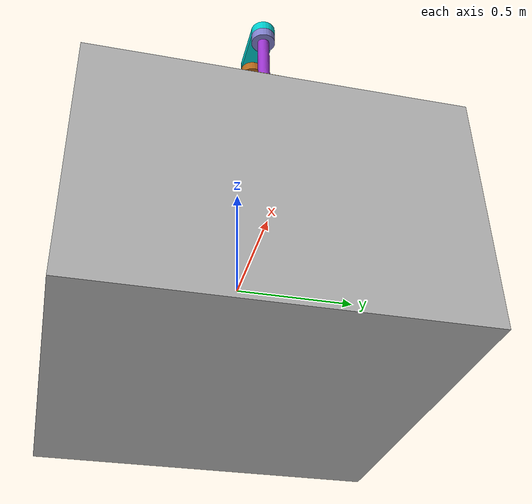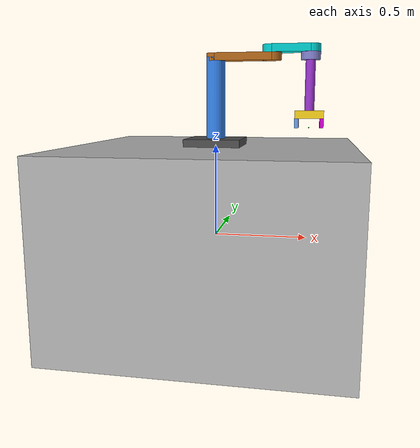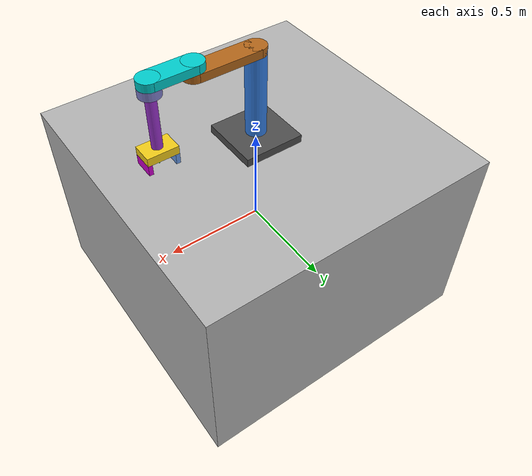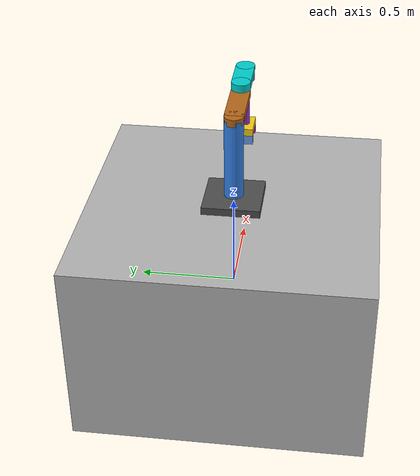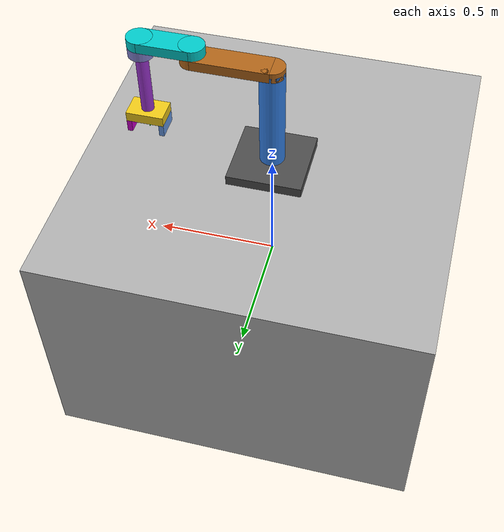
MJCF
<mujoco model="RRRP_SCARA_Robot">
  <compiler angle="radian" />
  <option timestep="0.01" />
  <option gravity="0 0 0"/>

  <visual>
    <headlight diffuse="0.8 0.8 0.8"/>
    <scale framewidth="0.02" framelength="0.5"/>
  </visual>

  <worldbody>
    <!-- Additional lighting for better visibility -->
    <light pos="1.0 1.0 2.0" dir="-1 -1 -1" diffuse="0.5 0.5 0.5"/>
    <light pos="-1.0 1.0 2.0" dir="1 -1 -1" diffuse="0.5 0.5 0.5"/>
    <light pos="0 0 3.0" dir="0 0 -1" diffuse="0.4 0.4 0.4"/>

    <!-- Table -->
    <body name="table" pos="0 0 0">
      <geom type="box" size="0.750 0.750 0.500" rgba="0.7 0.7 0.7 1.0"/>

    </body>
    <!-- Base with geometry only (no mass) -->
    <body name="base" pos="0 0 0.520">
      <!-- Base geometry: 3x LINK_RADIUS -->
      <geom type="box" size="0.150 0.150 0.020" rgba="0.3 0.3 0.3 1.0"/>

      <!-- L0: Vertical link (child of base/robot_root) - FIXED, NO JOINT -->
      <body name="L0" pos="0 0 0.020">
        <inertial pos="0 0 0.215" mass="1.0" diaginertia="0.01 0.01 0.005"/>
        <!-- L0 geometry: cylinder with specific radius -->
        <geom type="cylinder" size="0.050 0.215" pos="0 0 0.215" rgba="0.2 0.5 0.9 1.0"/>

        <!-- L1: First horizontal arm -->
        <body name="L1" pos="0 0 0.430">
          <inertial pos="0.150 0 0" mass="0.8" diaginertia="0.005 0.02 0.02"/>
          <!-- Joint 1: Shoulder joint (L1 rotates around Z-axis) -->
          <joint name="joint1" type="hinge" axis="0 0 1" pos="0 0 0" range="-1.5708 1.5708" ref="0.0000" damping="10.0"/>
          <!-- L1 geometry: main rectangular body -->
          <geom type="box" size="0.150 0.050 0.020" pos="0.150 0 0" rgba="0.7 0.4 0.1 1.0"/>

          <!-- L1 cylindrical joints at both ends for better visualization -->
          <geom name="L1_start_joint" type="cylinder" size="0.050 0.020" pos="0 0 0" rgba="0.7 0.4 0.1 1.0"/>
          <geom name="L1_end_joint" type="cylinder" size="0.050 0.020" pos="0.300 0 0" rgba="0.7 0.4 0.1 1.0"/>

          <!-- L2: Positioned above L1 at end (unnecessary /2 removed) -->
          <body name="L2" pos="0.300 0 0.040">
            <inertial pos="0.100 0 0" mass="0.5" diaginertia="0.003 0.01 0.01"/>
            <!-- Joint 2: Elbow joint (L2 rotates around Z-axis relative to L1) -->
            <joint name="joint2" type="hinge" axis="0 0 1" pos="0 0 0" range="-0.7854 0.7854" ref="0.0000" damping="10.0"/>

            <!-- L2 geometry: main rectangular body -->
            <geom type="box" size="0.100 0.050 0.020" pos="0.100 0 0" rgba="0.0 0.8 0.8 1.0"/>

          <!-- L2 cylindrical joints at both ends for better visualization -->
          <!-- Size 0.0501 (vs L1's 0.050) prevents Rerun batching, enables correct cyan color -->
          <geom name="L2_start_joint" type="cylinder" size="0.0501 0.0201" pos="0 0 0" rgba="0.0 0.8 0.8 1.0"/>
          <geom name="L2_end_joint" type="cylinder" size="0.0501 0.0201" pos="0.200 0 0" rgba="0.0 0.8 0.8 1.0"/>

            <!-- Prismatic joint structure at end of L2, positioned below L2 -->
            <body name="sleeve" pos="0.200 0 -0.040">
              <inertial pos="0 0 0" mass="0.1" diaginertia="0.001 0.001 0.001"/>
              <!-- Joint 3: Wrist rotation (sleeve/cylinder rotates hand/gripper around Z-axis) -->
              <joint name="joint3" type="hinge" axis="0 0 1" pos="0 0 0" range="-2.0944 3.1416" ref="0.0000" damping="10.0"/>
              <!-- Sleeve: Cylinder that rotates the hand -->
              <!-- Size 0.0502 (vs L1's 0.050, L2's 0.0501) prevents Rerun batching -->
              <geom type="cylinder" size="0.0502 0.0202" pos="0 0 0" rgba="0.5 0.5 0.8 1.0"/>

              <!-- Piston: Small cylinder that moves in sleeve -->
              <body name="piston" pos="0 0 0">
                <inertial pos="0 0 -0.075" mass="0.05" diaginertia="0.0005 0.0005 0.0005"/>
                <!-- Joint 4: Prismatic joint - axis flipped: +Z means larger values = retract UP, smaller values = extend DOWN -->
                <joint name="joint4" type="slide" axis="0 0 1" pos="0 0 0" range="0.0000 0.2500" ref="0.0000" damping="20.0"/>

                <!-- Piston geometry: connects sleeve bottom to EE -->
                <geom type="cylinder" size="0.025 0.150" pos="0 0 -0.150" rgba="0.6 0.2 0.8 1.0"/>

                <!-- End-effector gripper attached to piston -->
                <body name="ee" pos="0 0 -0.300">
                  <inertial pos="0 0 0" mass="0.05" diaginertia="0.0005 0.0005 0.0005"/>
                  <!-- Palm: horizontal rectangle at center (length=3*LINK_RADIUS, width=LINK_RADIUS) -->
                  <geom name="palm" type="box" size="0.075 0.050 0.020" pos="0 0 0" rgba="0.95 0.8 0.1 1.0"/>

                  <!-- Left finger: at right boundary, extends inward by FINGER_WIDTH -->
                  <geom name="left_finger" type="box" size="0.010 0.050 0.025" pos="0.065 0  -0.045" rgba="0.8 0.0 0.8 1.0"/>

                  <!-- Right finger: at left boundary, extends inward by FINGER_WIDTH -->
                  <geom name="right_finger" type="box" size="0.010 0.050 0.025" pos="-0.065 0 -0.045" rgba="0.4 0.6 0.9 1.0"/>

                  <!-- Site at tip of fingers for end-effector reference -->
                  <site name="ee_site" pos="0 0 -0.070" size="0.003" rgba="0 1 0 1"/>
                </body>
              </body>
            </body>
          </body>
        </body>
      </body>
    </body>
  </worldbody>

  <!-- Keyframes -->
  <keyframe>
        <key name="initial" qpos="0.0000 0.0000 0.0000 0.1000" qvel="0 0 0 0" ctrl="0 0 0 0"/>
    <key name="target" qpos="-1.5708 0.7854 -1.0472 0.0000" qvel="0 0 0 0" ctrl="0 0 0 0"/>
  </keyframe>

  <!-- Actuators -->
  <actuator>
    <motor joint="joint1" gear="100"/>
    <motor joint="joint2" gear="100"/>
    <motor joint="joint3" gear="100"/>
    <motor joint="joint4" gear="200"/>
  </actuator>

  <!-- Sensor -->
  <sensor>
    <framepos name="ee_pos_sensor" objtype="site" objname="ee_site"/>
  </sensor>
</mujoco>
